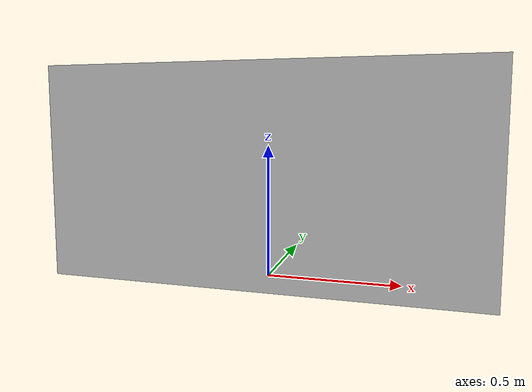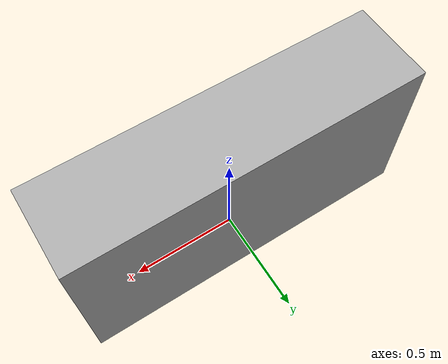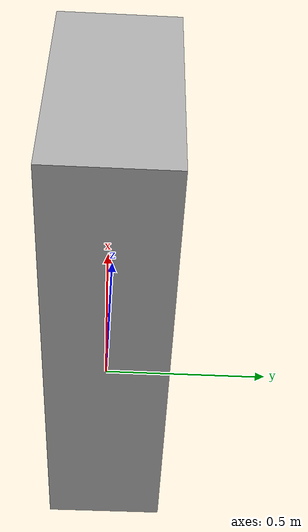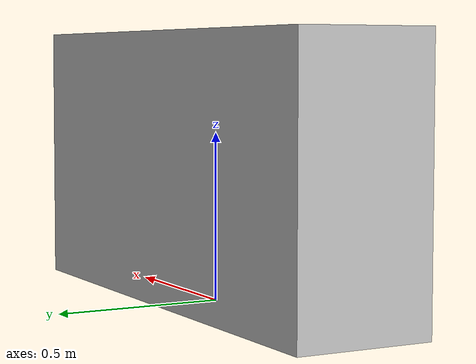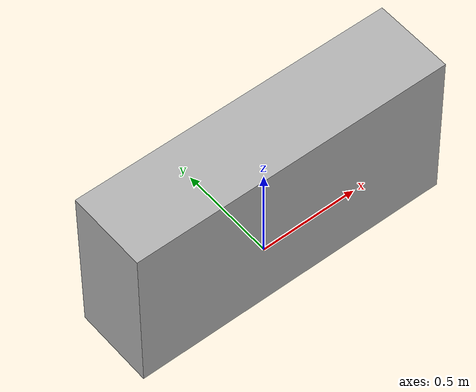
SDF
<?xml version="1.0"?>
<sdf version="1.7">
  <model name="Jersey_Barrier">
    <static>true</static>
    <link name="link">
      <pose>0 0 0.4 0 0 0</pose>
      <visual name="visual">
        <geometry>
          <box>
            <size>1.6 0.4 0.8</size>
          </box>
        </geometry>
        <material>
          <ambient>0.7 0.7 0.7 1</ambient>
          <diffuse>0.7 0.7 0.7 1</diffuse>
        </material>
      </visual>
      <collision name="collision">
        <geometry>
          <box>
            <size>1.6 0.4 0.8</size>
          </box>
        </geometry>
      </collision>
    </link>
  </model>
</sdf>
